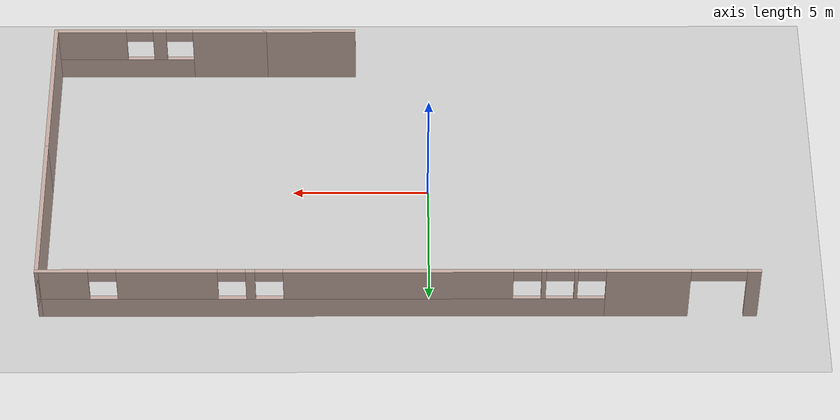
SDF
<sdf version="1.7">
 <world name="default">
  <model name="ground_plane">
   <static>1</static>
   <link name="link">
    <collision name="collision">
     <geometry><plane><normal>0 0 1</normal><size>100 100</size></plane></geometry>
     <surface>
      <contact><collide_bitmask>65535</collide_bitmask></contact>
      <friction><ode><mu>100</mu><mu2>50</mu2></ode></friction>
     </surface>
    </collision>
    <visual name="visual">
     <cast_shadows>0</cast_shadows>
     <geometry><plane><normal>0 0 1</normal><size>100 100</size></plane></geometry>
     <material>
      <script><uri>file://media/materials/scripts/gazebo.material</uri><name>Gazebo/Grey</name></script>
     </material>
    </visual>
   </link>
  </model>
  <model name="Boundary">
   <link name="Wall_23">
    <pose>3.34982 -5.85738 0 0 -0 0</pose>
    <visual name="Wall_23_Visual">
     <pose>0 0 1.25 0 -0 0</pose>
     <geometry><box><size>3.5 0.15 2.5</size></box></geometry>
     <material>
      <script><uri>file://media/materials/scripts/gazebo.material</uri><name>Gazebo/Grey</name></script>
      <ambient>0.760784 0.662745 0.627451 1</ambient>
      <shader type="pixel"/>
     </material>
    </visual>
    <collision name="Wall_23_Collision">
     <pose>0 0 1.25 0 -0 0</pose>
     <geometry><box><size>3.5 0.15 2.5</size></box></geometry>
     <surface>
      <friction>
       <ode><mu>1</mu><mu2>1</mu2><fdir1>0 0 0</fdir1><slip1>0</slip1><slip2>0</slip2></ode>
       <torsional>
        <coefficient>1</coefficient>
        <patch_radius>0</patch_radius>
        <surface_radius>0</surface_radius>
        <use_patch_radius>1</use_patch_radius>
        <ode><slip>0</slip></ode>
       </torsional>
      </friction>
      <bounce><restitution_coefficient>0</restitution_coefficient><threshold>1e+06</threshold></bounce>
      <contact>
       <collide_without_contact>0</collide_without_contact>
       <collide_without_contact_bitmask>1</collide_without_contact_bitmask>
       <collide_bitmask>1</collide_bitmask>
       <ode>
        <soft_cfm>0</soft_cfm>
        <soft_erp>0.2</soft_erp>
        <kp>1e+13</kp>
        <kd>1</kd>
        <max_vel>0.01</max_vel>
        <min_depth>0</min_depth>
       </ode>
       <bullet>
        <split_impulse>1</split_impulse>
        <split_impulse_penetration_threshold>-0.01</split_impulse_penetration_threshold>
        <soft_cfm>0</soft_cfm>
        <soft_erp>0.2</soft_erp>
        <kp>1e+13</kp>
        <kd>1</kd>
       </bullet>
      </contact>
     </surface>
    </collision>
   </link>
   <link name="Wall_29">
    <pose>8.94982 -5.85738 0 0 -0 0</pose>
    <visual name="Wall_29_Visual_0">
     <pose>-2.60604 0 1.25 0 -0 0</pose>
     <geometry><box><size>2.78791 0.15 2.5</size></box></geometry>
     <material>
      <script><uri>file://media/materials/scripts/gazebo.material</uri><name>Gazebo/Grey</name></script>
      <ambient>0.760784 0.662745 0.627451 1</ambient>
      <shader type="pixel"/>
     </material>
    </visual>
    <visual name="Wall_29_Visual_1">
     <pose>1.39396 0 0.5 0 -0 0</pose>
     <geometry><box><size>5.21209 0.15 1</size></box></geometry>
     <material>
      <script><uri>file://media/materials/scripts/gazebo.material</uri><name>Gazebo/Grey</name></script>
      <ambient>0.760784 0.662745 0.627451 1</ambient>
      <shader type="pixel"/>
     </material>
    </visual>
    <visual name="Wall_29_Visual_2">
     <pose>0.036339 0 1.75 0 -0 0</pose>
     <geometry><box><size>0.496857 0.15 1.5</size></box></geometry>
     <material>
      <script><uri>file://media/materials/scripts/gazebo.material</uri><name>Gazebo/Grey</name></script>
      <ambient>0.760784 0.662745 0.627451 1</ambient>
      <shader type="pixel"/>
     </material>
    </visual>
    <visual name="Wall_29_Visual_3">
     <pose>2.64238 0 1.75 0 -0 0</pose>
     <geometry><box><size>2.71523 0.15 1.5</size></box></geometry>
     <material>
      <script><uri>file://media/materials/scripts/gazebo.material</uri><name>Gazebo/Grey</name></script>
      <ambient>0.760784 0.662745 0.627451 1</ambient>
      <shader type="pixel"/>
     </material>
    </visual>
    <visual name="Wall_29_Visual_4">
     <pose>-0.71209 0 2.25 0 -0 0</pose>
     <geometry><box><size>1 0.15 0.5</size></box></geometry>
     <material>
      <script><uri>file://media/materials/scripts/gazebo.material</uri><name>Gazebo/Grey</name></script>
      <ambient>0.760784 0.662745 0.627451 1</ambient>
      <shader type="pixel"/>
     </material>
    </visual>
    <visual name="Wall_29_Visual_5">
     <pose>0.784767 0 2.25 0 -0 0</pose>
     <geometry><box><size>1 0.15 0.5</size></box></geometry>
     <material>
      <script><uri>file://media/materials/scripts/gazebo.material</uri><name>Gazebo/Grey</name></script>
      <ambient>0.760784 0.662745 0.627451 1</ambient>
      <shader type="pixel"/>
     </material>
    </visual>
    <collision name="Wall_29_Collision_0">
     <pose>-2.60604 0 1.25 0 -0 0</pose>
     <geometry><box><size>2.78791 0.15 2.5</size></box></geometry>
     <surface>
      <friction>
       <ode><mu>1</mu><mu2>1</mu2><fdir1>0 0 0</fdir1><slip1>0</slip1><slip2>0</slip2></ode>
       <torsional>
        <coefficient>1</coefficient>
        <patch_radius>0</patch_radius>
        <surface_radius>0</surface_radius>
        <use_patch_radius>1</use_patch_radius>
        <ode><slip>0</slip></ode>
       </torsional>
      </friction>
      <bounce><restitution_coefficient>0</restitution_coefficient><threshold>1e+06</threshold></bounce>
      <contact>
       <collide_without_contact>0</collide_without_contact>
       <collide_without_contact_bitmask>1</collide_without_contact_bitmask>
       <collide_bitmask>1</collide_bitmask>
       <ode>
        <soft_cfm>0</soft_cfm>
        <soft_erp>0.2</soft_erp>
        <kp>1e+13</kp>
        <kd>1</kd>
        <max_vel>0.01</max_vel>
        <min_depth>0</min_depth>
       </ode>
       <bullet>
        <split_impulse>1</split_impulse>
        <split_impulse_penetration_threshold>-0.01</split_impulse_penetration_threshold>
        <soft_cfm>0</soft_cfm>
        <soft_erp>0.2</soft_erp>
        <kp>1e+13</kp>
        <kd>1</kd>
       </bullet>
      </contact>
     </surface>
    </collision>
    <collision name="Wall_29_Collision_1">
     <pose>1.39396 0 0.5 0 -0 0</pose>
     <geometry><box><size>5.21209 0.15 1</size></box></geometry>
     <surface>
      <friction>
       <ode><mu>1</mu><mu2>1</mu2><fdir1>0 0 0</fdir1><slip1>0</slip1><slip2>0</slip2></ode>
       <torsional>
        <coefficient>1</coefficient>
        <patch_radius>0</patch_radius>
        <surface_radius>0</surface_radius>
        <use_patch_radius>1</use_patch_radius>
        <ode><slip>0</slip></ode>
       </torsional>
      </friction>
      <bounce><restitution_coefficient>0</restitution_coefficient><threshold>1e+06</threshold></bounce>
      <contact>
       <collide_without_contact>0</collide_without_contact>
       <collide_without_contact_bitmask>1</collide_without_contact_bitmask>
       <collide_bitmask>1</collide_bitmask>
       <ode>
        <soft_cfm>0</soft_cfm>
        <soft_erp>0.2</soft_erp>
        <kp>1e+13</kp>
        <kd>1</kd>
        <max_vel>0.01</max_vel>
        <min_depth>0</min_depth>
       </ode>
       <bullet>
        <split_impulse>1</split_impulse>
        <split_impulse_penetration_threshold>-0.01</split_impulse_penetration_threshold>
        <soft_cfm>0</soft_cfm>
        <soft_erp>0.2</soft_erp>
        <kp>1e+13</kp>
        <kd>1</kd>
       </bullet>
      </contact>
     </surface>
    </collision>
    <collision name="Wall_29_Collision_2">
     <pose>0.036339 0 1.75 0 -0 0</pose>
     <geometry><box><size>0.496857 0.15 1.5</size></box></geometry>
     <surface>
      <friction>
       <ode><mu>1</mu><mu2>1</mu2><fdir1>0 0 0</fdir1><slip1>0</slip1><slip2>0</slip2></ode>
       <torsional>
        <coefficient>1</coefficient>
        <patch_radius>0</patch_radius>
        <surface_radius>0</surface_radius>
        <use_patch_radius>1</use_patch_radius>
        <ode><slip>0</slip></ode>
       </torsional>
      </friction>
      <bounce><restitution_coefficient>0</restitution_coefficient><threshold>1e+06</threshold></bounce>
      <contact>
       <collide_without_contact>0</collide_without_contact>
       <collide_without_contact_bitmask>1</collide_without_contact_bitmask>
       <collide_bitmask>1</collide_bitmask>
       <ode>
        <soft_cfm>0</soft_cfm>
        <soft_erp>0.2</soft_erp>
        <kp>1e+13</kp>
        <kd>1</kd>
        <max_vel>0.01</max_vel>
        <min_depth>0</min_depth>
       </ode>
       <bullet>
        <split_impulse>1</split_impulse>
        <split_impulse_penetration_threshold>-0.01</split_impulse_penetration_threshold>
        <soft_cfm>0</soft_cfm>
        <soft_erp>0.2</soft_erp>
        <kp>1e+13</kp>
        <kd>1</kd>
       </bullet>
      </contact>
     </surface>
    </collision>
    <collision name="Wall_29_Collision_3">
     <pose>2.64238 0 1.75 0 -0 0</pose>
     <geometry><box><size>2.71523 0.15 1.5</size></box></geometry>
     <surface>
      <friction>
       <ode><mu>1</mu><mu2>1</mu2><fdir1>0 0 0</fdir1><slip1>0</slip1><slip2>0</slip2></ode>
       <torsional>
        <coefficient>1</coefficient>
        <patch_radius>0</patch_radius>
        <surface_radius>0</surface_radius>
        <use_patch_radius>1</use_patch_radius>
        <ode><slip>0</slip></ode>
       </torsional>
      </friction>
      <bounce><restitution_coefficient>0</restitution_coefficient><threshold>1e+06</threshold></bounce>
      <contact>
       <collide_without_contact>0</collide_without_contact>
       <collide_without_contact_bitmask>1</collide_without_contact_bitmask>
       <collide_bitmask>1</collide_bitmask>
       <ode>
        <soft_cfm>0</soft_cfm>
        <soft_erp>0.2</soft_erp>
        <kp>1e+13</kp>
        <kd>1</kd>
        <max_vel>0.01</max_vel>
        <min_depth>0</min_depth>
       </ode>
       <bullet>
        <split_impulse>1</split_impulse>
        <split_impulse_penetration_threshold>-0.01</split_impulse_penetration_threshold>
        <soft_cfm>0</soft_cfm>
        <soft_erp>0.2</soft_erp>
        <kp>1e+13</kp>
        <kd>1</kd>
       </bullet>
      </contact>
     </surface>
    </collision>
    <collision name="Wall_29_Collision_5">
     <pose>0.784767 0 2.25 0 -0 0</pose>
     <geometry><box><size>1 0.15 0.5</size></box></geometry>
     <surface>
      <friction>
       <ode><mu>1</mu><mu2>1</mu2><fdir1>0 0 0</fdir1><slip1>0</slip1><slip2>0</slip2></ode>
       <torsional>
        <coefficient>1</coefficient>
        <patch_radius>0</patch_radius>
        <surface_radius>0</surface_radius>
        <use_patch_radius>1</use_patch_radius>
        <ode><slip>0</slip></ode>
       </torsional>
      </friction>
      <bounce><restitution_coefficient>0</restitution_coefficient><threshold>1e+06</threshold></bounce>
      <contact>
       <collide_without_contact>0</collide_without_contact>
       <collide_without_contact_bitmask>1</collide_without_contact_bitmask>
       <collide_bitmask>1</collide_bitmask>
       <ode>
        <soft_cfm>0</soft_cfm>
        <soft_erp>0.2</soft_erp>
        <kp>1e+13</kp>
        <kd>1</kd>
        <max_vel>0.01</max_vel>
        <min_depth>0</min_depth>
       </ode>
       <bullet>
        <split_impulse>1</split_impulse>
        <split_impulse_penetration_threshold>-0.01</split_impulse_penetration_threshold>
        <soft_cfm>0</soft_cfm>
        <soft_erp>0.2</soft_erp>
        <kp>1e+13</kp>
        <kd>1</kd>
       </bullet>
      </contact>
     </surface>
    </collision>
    <collision name="Wall_29_Collision_4">
     <pose>-0.71209 0 2.25 0 -0 0</pose>
     <geometry><box><size>1 0.15 0.5</size></box></geometry>
     <surface>
      <friction>
       <ode><mu>1</mu><mu2>1</mu2><fdir1>0 0 0</fdir1><slip1>0</slip1><slip2>0</slip2></ode>
       <torsional>
        <coefficient>1</coefficient>
        <patch_radius>0</patch_radius>
        <surface_radius>0</surface_radius>
        <use_patch_radius>1</use_patch_radius>
        <ode><slip>0</slip></ode>
       </torsional>
      </friction>
      <bounce><restitution_coefficient>0</restitution_coefficient><threshold>1e+06</threshold></bounce>
      <contact>
       <collide_without_contact>0</collide_without_contact>
       <collide_without_contact_bitmask>1</collide_without_contact_bitmask>
       <collide_bitmask>1</collide_bitmask>
       <ode>
        <soft_cfm>0</soft_cfm>
        <soft_erp>0.2</soft_erp>
        <kp>1e+13</kp>
        <kd>1</kd>
        <max_vel>0.01</max_vel>
        <min_depth>0</min_depth>
       </ode>
       <bullet>
        <split_impulse>1</split_impulse>
        <split_impulse_penetration_threshold>-0.01</split_impulse_penetration_threshold>
        <soft_cfm>0</soft_cfm>
        <soft_erp>0.2</soft_erp>
        <kp>1e+13</kp>
        <kd>1</kd>
       </bullet>
      </contact>
     </surface>
    </collision>
   </link>
   <link name="Wall_31">
    <pose>12.8748 -2.93238 0 0 -0 1.5708</pose>
    <visual name="Wall_31_Visual">
     <pose>0 0 1.25 0 -0 0</pose>
     <geometry><box><size>6 0.15 2.5</size></box></geometry>
     <material>
      <script><uri>file://media/materials/scripts/gazebo.material</uri><name>Gazebo/Grey</name></script>
      <ambient>0.760784 0.662745 0.627451 1</ambient>
      <shader type="pixel"/>
     </material>
    </visual>
    <collision name="Wall_31_Collision">
     <pose>0 0 1.25 0 -0 0</pose>
     <geometry><box><size>6 0.15 2.5</size></box></geometry>
     <surface>
      <friction>
       <ode><mu>1</mu><mu2>1</mu2><fdir1>0 0 0</fdir1><slip1>0</slip1><slip2>0</slip2></ode>
       <torsional>
        <coefficient>1</coefficient>
        <patch_radius>0</patch_radius>
        <surface_radius>0</surface_radius>
        <use_patch_radius>1</use_patch_radius>
        <ode><slip>0</slip></ode>
       </torsional>
      </friction>
      <bounce><restitution_coefficient>0</restitution_coefficient><threshold>1e+06</threshold></bounce>
      <contact>
       <collide_without_contact>0</collide_without_contact>
       <collide_without_contact_bitmask>1</collide_without_contact_bitmask>
       <collide_bitmask>1</collide_bitmask>
       <ode>
        <soft_cfm>0</soft_cfm>
        <soft_erp>0.2</soft_erp>
        <kp>1e+13</kp>
        <kd>1</kd>
        <max_vel>0.01</max_vel>
        <min_depth>0</min_depth>
       </ode>
       <bullet>
        <split_impulse>1</split_impulse>
        <split_impulse_penetration_threshold>-0.01</split_impulse_penetration_threshold>
        <soft_cfm>0</soft_cfm>
        <soft_erp>0.2</soft_erp>
        <kp>1e+13</kp>
        <kd>1</kd>
       </bullet>
      </contact>
     </surface>
    </collision>
   </link>
   <link name="Wall_37">
    <pose>12.8748 2.91762 0 0 -0 1.5708</pose>
    <visual name="Wall_37_Visual">
     <pose>0 0 1.25 0 -0 0</pose>
     <geometry><box><size>6 0.15 2.5</size></box></geometry>
     <material>
      <script><uri>file://media/materials/scripts/gazebo.material</uri><name>Gazebo/Grey</name></script>
      <ambient>0.760784 0.662745 0.627451 1</ambient>
      <shader type="pixel"/>
     </material>
    </visual>
    <collision name="Wall_37_Collision">
     <pose>0 0 1.25 0 -0 0</pose>
     <geometry><box><size>6 0.15 2.5</size></box></geometry>
     <surface>
      <friction>
       <ode><mu>1</mu><mu2>1</mu2><fdir1>0 0 0</fdir1><slip1>0</slip1><slip2>0</slip2></ode>
       <torsional>
        <coefficient>1</coefficient>
        <patch_radius>0</patch_radius>
        <surface_radius>0</surface_radius>
        <use_patch_radius>1</use_patch_radius>
        <ode><slip>0</slip></ode>
       </torsional>
      </friction>
      <bounce><restitution_coefficient>0</restitution_coefficient><threshold>1e+06</threshold></bounce>
      <contact>
       <collide_without_contact>0</collide_without_contact>
       <collide_without_contact_bitmask>1</collide_without_contact_bitmask>
       <collide_bitmask>1</collide_bitmask>
       <ode>
        <soft_cfm>0</soft_cfm>
        <soft_erp>0.2</soft_erp>
        <kp>1e+13</kp>
        <kd>1</kd>
        <max_vel>0.01</max_vel>
        <min_depth>0</min_depth>
       </ode>
       <bullet>
        <split_impulse>1</split_impulse>
        <split_impulse_penetration_threshold>-0.01</split_impulse_penetration_threshold>
        <soft_cfm>0</soft_cfm>
        <soft_erp>0.2</soft_erp>
        <kp>1e+13</kp>
        <kd>1</kd>
       </bullet>
      </contact>
     </surface>
    </collision>
   </link>
   <link name="Wall_39">
    <pose>0 5.84264 0 0 0 -2e-06</pose>
    <visual name="Wall_39_Visual_0">
     <pose>-12.6963 0 1.25 0 -0 0</pose>
     <geometry><box><size>0.507003 0.15 2.5</size></box></geometry>
     <material>
      <script><uri>file://media/materials/scripts/gazebo.material</uri><name>Gazebo/Grey</name></script>
      <ambient>0.760784 0.662745 0.627451 1</ambient>
      <shader type="pixel"/>
     </material>
    </visual>
    <visual name="Wall_39_Visual_1">
     <pose>-8.93538 0 1.25 0 -0 0</pose>
     <geometry><box><size>3.01488 0.15 2.5</size></box></geometry>
     <material>
      <script><uri>file://media/materials/scripts/gazebo.material</uri><name>Gazebo/Grey</name></script>
      <ambient>0.760784 0.662745 0.627451 1</ambient>
      <shader type="pixel"/>
     </material>
    </visual>
    <visual name="Wall_39_Visual_2">
     <pose>2.76094 0 0.5 0 -0 0</pose>
     <geometry><box><size>20.3778 0.15 1</size></box></geometry>
     <material>
      <script><uri>file://media/materials/scripts/gazebo.material</uri><name>Gazebo/Grey</name></script>
      <ambient>0.760784 0.662745 0.627451 1</ambient>
      <shader type="pixel"/>
     </material>
    </visual>
    <visual name="Wall_39_Visual_3">
     <pose>-6.3614 0 1.75 0 -0 0</pose>
     <geometry><box><size>0.133081 0.15 1.5</size></box></geometry>
     <material>
      <script><uri>file://media/materials/scripts/gazebo.material</uri><name>Gazebo/Grey</name></script>
      <ambient>0.760784 0.662745 0.627451 1</ambient>
      <shader type="pixel"/>
     </material>
    </visual>
    <visual name="Wall_39_Visual_4">
     <pose>-5.20894 0 1.75 0 -0 0</pose>
     <geometry><box><size>0.171834 0.15 1.5</size></box></geometry>
     <material>
      <script><uri>file://media/materials/scripts/gazebo.material</uri><name>Gazebo/Grey</name></script>
      <ambient>0.760784 0.662745 0.627451 1</ambient>
      <shader type="pixel"/>
     </material>
    </visual>
    <visual name="Wall_39_Visual_5">
     <pose>-0.013145 0 1.75 0 -0 0</pose>
     <geometry><box><size>8.21975 0.15 1.5</size></box></geometry>
     <material>
      <script><uri>file://media/materials/scripts/gazebo.material</uri><name>Gazebo/Grey</name></script>
      <ambient>0.760784 0.662745 0.627451 1</ambient>
      <shader type="pixel"/>
     </material>
    </visual>
    <visual name="Wall_39_Visual_6">
     <pose>5.26425 0 1.75 0 -0 0</pose>
     <geometry><box><size>0.335033 0.15 1.5</size></box></geometry>
     <material>
      <script><uri>file://media/materials/scripts/gazebo.material</uri><name>Gazebo/Grey</name></script>
      <ambient>0.760784 0.662745 0.627451 1</ambient>
      <shader type="pixel"/>
     </material>
    </visual>
    <visual name="Wall_39_Visual_7">
     <pose>8.23773 0 1.75 0 -0 0</pose>
     <geometry><box><size>3.61194 0.15 1.5</size></box></geometry>
     <material>
      <script><uri>file://media/materials/scripts/gazebo.material</uri><name>Gazebo/Grey</name></script>
      <ambient>0.760784 0.662745 0.627451 1</ambient>
      <shader type="pixel"/>
     </material>
    </visual>
    <visual name="Wall_39_Visual_8">
     <pose>11.9968 0 1.75 0 -0 0</pose>
     <geometry><box><size>1.90612 0.15 1.5</size></box></geometry>
     <material>
      <script><uri>file://media/materials/scripts/gazebo.material</uri><name>Gazebo/Grey</name></script>
      <ambient>0.760784 0.662745 0.627451 1</ambient>
      <shader type="pixel"/>
     </material>
    </visual>
    <visual name="Wall_39_Visual_9">
     <pose>-11.4428 0 2.25 0 -0 0</pose>
     <geometry><box><size>2 0.15 0.5</size></box></geometry>
     <material>
      <script><uri>file://media/materials/scripts/gazebo.material</uri><name>Gazebo/Grey</name></script>
      <ambient>0.760784 0.662745 0.627451 1</ambient>
      <shader type="pixel"/>
     </material>
    </visual>
    <visual name="Wall_39_Visual_10">
     <pose>-6.92794 0 2.25 0 -0 0</pose>
     <geometry><box><size>1 0.15 0.5</size></box></geometry>
     <material>
      <script><uri>file://media/materials/scripts/gazebo.material</uri><name>Gazebo/Grey</name></script>
      <ambient>0.760784 0.662745 0.627451 1</ambient>
      <shader type="pixel"/>
     </material>
    </visual>
    <visual name="Wall_39_Visual_11">
     <pose>-5.79486 0 2.25 0 -0 0</pose>
     <geometry><box><size>1 0.15 0.5</size></box></geometry>
     <material>
      <script><uri>file://media/materials/scripts/gazebo.material</uri><name>Gazebo/Grey</name></script>
      <ambient>0.760784 0.662745 0.627451 1</ambient>
      <shader type="pixel"/>
     </material>
    </visual>
    <visual name="Wall_39_Visual_12">
     <pose>-4.62302 0 2.25 0 -0 0</pose>
     <geometry><box><size>1 0.15 0.5</size></box></geometry>
     <material>
      <script><uri>file://media/materials/scripts/gazebo.material</uri><name>Gazebo/Grey</name></script>
      <ambient>0.760784 0.662745 0.627451 1</ambient>
      <shader type="pixel"/>
     </material>
    </visual>
    <visual name="Wall_39_Visual_13">
     <pose>4.59673 0 2.25 0 -0 0</pose>
     <geometry><box><size>1 0.15 0.5</size></box></geometry>
     <material>
      <script><uri>file://media/materials/scripts/gazebo.material</uri><name>Gazebo/Grey</name></script>
      <ambient>0.760784 0.662745 0.627451 1</ambient>
      <shader type="pixel"/>
     </material>
    </visual>
    <visual name="Wall_39_Visual_14">
     <pose>5.93177 0 2.25 0 -0 0</pose>
     <geometry><box><size>1 0.15 0.5</size></box></geometry>
     <material>
      <script><uri>file://media/materials/scripts/gazebo.material</uri><name>Gazebo/Grey</name></script>
      <ambient>0.760784 0.662745 0.627451 1</ambient>
      <shader type="pixel"/>
     </material>
    </visual>
    <visual name="Wall_39_Visual_15">
     <pose>10.5437 0 2.25 0 -0 0</pose>
     <geometry><box><size>1 0.15 0.5</size></box></geometry>
     <material>
      <script><uri>file://media/materials/scripts/gazebo.material</uri><name>Gazebo/Grey</name></script>
      <ambient>0.760784 0.662745 0.627451 1</ambient>
      <shader type="pixel"/>
     </material>
    </visual>
    <collision name="Wall_39_Collision_0">
     <pose>-12.6963 0 1.25 0 -0 0</pose>
     <geometry><box><size>0.507003 0.15 2.5</size></box></geometry>
     <surface>
      <friction>
       <ode><mu>1</mu><mu2>1</mu2><fdir1>0 0 0</fdir1><slip1>0</slip1><slip2>0</slip2></ode>
       <torsional>
        <coefficient>1</coefficient>
        <patch_radius>0</patch_radius>
        <surface_radius>0</surface_radius>
        <use_patch_radius>1</use_patch_radius>
        <ode><slip>0</slip></ode>
       </torsional>
      </friction>
      <bounce><restitution_coefficient>0</restitution_coefficient><threshold>1e+06</threshold></bounce>
      <contact>
       <collide_without_contact>0</collide_without_contact>
       <collide_without_contact_bitmask>1</collide_without_contact_bitmask>
       <collide_bitmask>1</collide_bitmask>
       <ode>
        <soft_cfm>0</soft_cfm>
        <soft_erp>0.2</soft_erp>
        <kp>1e+13</kp>
        <kd>1</kd>
        <max_vel>0.01</max_vel>
        <min_depth>0</min_depth>
       </ode>
       <bullet>
        <split_impulse>1</split_impulse>
        <split_impulse_penetration_threshold>-0.01</split_impulse_penetration_threshold>
        <soft_cfm>0</soft_cfm>
        <soft_erp>0.2</soft_erp>
        <kp>1e+13</kp>
        <kd>1</kd>
       </bullet>
      </contact>
     </surface>
    </collision>
    <collision name="Wall_39_Collision_1">
     <pose>-8.93538 0 1.25 0 -0 0</pose>
     <geometry><box><size>3.01488 0.15 2.5</size></box></geometry>
     <surface>
      <friction>
       <ode><mu>1</mu><mu2>1</mu2><fdir1>0 0 0</fdir1><slip1>0</slip1><slip2>0</slip2></ode>
       <torsional>
        <coefficient>1</coefficient>
        <patch_radius>0</patch_radius>
        <surface_radius>0</surface_radius>
        <use_patch_radius>1</use_patch_radius>
        <ode><slip>0</slip></ode>
       </torsional>
      </friction>
      <bounce><restitution_coefficient>0</restitution_coefficient><threshold>1e+06</threshold></bounce>
      <contact>
       <collide_without_contact>0</collide_without_contact>
       <collide_without_contact_bitmask>1</collide_without_contact_bitmask>
       <collide_bitmask>1</collide_bitmask>
       <ode>
        <soft_cfm>0</soft_cfm>
        <soft_erp>0.2</soft_erp>
        <kp>1e+13</kp>
        <kd>1</kd>
        <max_vel>0.01</max_vel>
        <min_depth>0</min_depth>
       </ode>
       <bullet>
        <split_impulse>1</split_impulse>
        <split_impulse_penetration_threshold>-0.01</split_impulse_penetration_threshold>
        <soft_cfm>0</soft_cfm>
        <soft_erp>0.2</soft_erp>
        <kp>1e+13</kp>
        <kd>1</kd>
       </bullet>
      </contact>
     </surface>
    </collision>
    <collision name="Wall_39_Collision_2">
     <pose>2.76094 0 0.5 0 -0 0</pose>
     <geometry><box><size>20.3778 0.15 1</size></box></geometry>
     <surface>
      <friction>
       <ode><mu>1</mu><mu2>1</mu2><fdir1>0 0 0</fdir1><slip1>0</slip1><slip2>0</slip2></ode>
       <torsional>
        <coefficient>1</coefficient>
        <patch_radius>0</patch_radius>
        <surface_radius>0</surface_radius>
        <use_patch_radius>1</use_patch_radius>
        <ode><slip>0</slip></ode>
       </torsional>
      </friction>
      <bounce><restitution_coefficient>0</restitution_coefficient><threshold>1e+06</threshold></bounce>
      <contact>
       <collide_without_contact>0</collide_without_contact>
       <collide_without_contact_bitmask>1</collide_without_contact_bitmask>
       <collide_bitmask>1</collide_bitmask>
       <ode>
        <soft_cfm>0</soft_cfm>
        <soft_erp>0.2</soft_erp>
        <kp>1e+13</kp>
        <kd>1</kd>
        <max_vel>0.01</max_vel>
        <min_depth>0</min_depth>
       </ode>
       <bullet>
        <split_impulse>1</split_impulse>
        <split_impulse_penetration_threshold>-0.01</split_impulse_penetration_threshold>
        <soft_cfm>0</soft_cfm>
        <soft_erp>0.2</soft_erp>
        <kp>1e+13</kp>
        <kd>1</kd>
       </bullet>
      </contact>
     </surface>
    </collision>
    <collision name="Wall_39_Collision_3">
     <pose>-6.3614 0 1.75 0 -0 0</pose>
     <geometry><box><size>0.133081 0.15 1.5</size></box></geometry>
     <surface>
      <friction>
       <ode><mu>1</mu><mu2>1</mu2><fdir1>0 0 0</fdir1><slip1>0</slip1><slip2>0</slip2></ode>
       <torsional>
        <coefficient>1</coefficient>
        <patch_radius>0</patch_radius>
        <surface_radius>0</surface_radius>
        <use_patch_radius>1</use_patch_radius>
        <ode><slip>0</slip></ode>
       </torsional>
      </friction>
      <bounce><restitution_coefficient>0</restitution_coefficient><threshold>1e+06</threshold></bounce>
      <contact>
       <collide_without_contact>0</collide_without_contact>
       <collide_without_contact_bitmask>1</collide_without_contact_bitmask>
       <collide_bitmask>1</collide_bitmask>
       <ode>
        <soft_cfm>0</soft_cfm>
        <soft_erp>0.2</soft_erp>
        <kp>1e+13</kp>
        <kd>1</kd>
        <max_vel>0.01</max_vel>
        <min_depth>0</min_depth>
       </ode>
       <bullet>
        <split_impulse>1</split_impulse>
        <split_impulse_penetration_threshold>-0.01</split_impulse_penetration_threshold>
        <soft_cfm>0</soft_cfm>
        <soft_erp>0.2</soft_erp>
        <kp>1e+13</kp>
        <kd>1</kd>
       </bullet>
      </contact>
     </surface>
    </collision>
    <collision name="Wall_39_Collision_5">
     <pose>-0.013145 0 1.75 0 -0 0</pose>
     <geometry><box><size>8.21975 0.15 1.5</size></box></geometry>
     <surface>
      <friction>
       <ode><mu>1</mu><mu2>1</mu2><fdir1>0 0 0</fdir1><slip1>0</slip1><slip2>0</slip2></ode>
       <torsional>
        <coefficient>1</coefficient>
        <patch_radius>0</patch_radius>
        <surface_radius>0</surface_radius>
        <use_patch_radius>1</use_patch_radius>
        <ode><slip>0</slip></ode>
       </torsional>
      </friction>
      <bounce><restitution_coefficient>0</restitution_coefficient><threshold>1e+06</threshold></bounce>
      <contact>
       <collide_without_contact>0</collide_without_contact>
       <collide_without_contact_bitmask>1</collide_without_contact_bitmask>
       <collide_bitmask>1</collide_bitmask>
       <ode>
        <soft_cfm>0</soft_cfm>
        <soft_erp>0.2</soft_erp>
        <kp>1e+13</kp>
        <kd>1</kd>
        <max_vel>0.01</max_vel>
        <min_depth>0</min_depth>
       </ode>
       <bullet>
        <split_impulse>1</split_impulse>
        <split_impulse_penetration_threshold>-0.01</split_impulse_penetration_threshold>
        <soft_cfm>0</soft_cfm>
        <soft_erp>0.2</soft_erp>
        <kp>1e+13</kp>
        <kd>1</kd>
       </bullet>
      </contact>
     </surface>
    </collision>
    <collision name="Wall_39_Collision_4">
     <pose>-5.20894 0 1.75 0 -0 0</pose>
     <geometry><box><size>0.171834 0.15 1.5</size></box></geometry>
     <surface>
      <friction>
       <ode><mu>1</mu><mu2>1</mu2><fdir1>0 0 0</fdir1><slip1>0</slip1><slip2>0</slip2></ode>
       <torsional>
        <coefficient>1</coefficient>
        <patch_radius>0</patch_radius>
        <surface_radius>0</surface_radius>
        <use_patch_radius>1</use_patch_radius>
        <ode><slip>0</slip></ode>
       </torsional>
      </friction>
      <bounce><restitution_coefficient>0</restitution_coefficient><threshold>1e+06</threshold></bounce>
      <contact>
       <collide_without_contact>0</collide_without_contact>
       <collide_without_contact_bitmask>1</collide_without_contact_bitmask>
       <collide_bitmask>1</collide_bitmask>
       <ode>
        <soft_cfm>0</soft_cfm>
        <soft_erp>0.2</soft_erp>
        <kp>1e+13</kp>
        <kd>1</kd>
        <max_vel>0.01</max_vel>
        <min_depth>0</min_depth>
       </ode>
       <bullet>
        <split_impulse>1</split_impulse>
        <split_impulse_penetration_threshold>-0.01</split_impulse_penetration_threshold>
        <soft_cfm>0</soft_cfm>
        <soft_erp>0.2</soft_erp>
        <kp>1e+13</kp>
        <kd>1</kd>
       </bullet>
      </contact>
     </surface>
    </collision>
    <collision name="Wall_39_Collision_6">
     <pose>5.26425 0 1.75 0 -0 0</pose>
     <geometry><box><size>0.335033 0.15 1.5</size></box></geometry>
     <surface>
      <friction>
       <ode><mu>1</mu><mu2>1</mu2><fdir1>0 0 0</fdir1><slip1>0</slip1><slip2>0</slip2></ode>
       <torsional>
        <coefficient>1</coefficient>
        <patch_radius>0</patch_radius>
        <surface_radius>0</surface_radius>
        <use_patch_radius>1</use_patch_radius>
        <ode><slip>0</slip></ode>
       </torsional>
      </friction>
      <bounce><restitution_coefficient>0</restitution_coefficient><threshold>1e+06</threshold></bounce>
      <contact>
       <collide_without_contact>0</collide_without_contact>
       <collide_without_contact_bitmask>1</collide_without_contact_bitmask>
       <collide_bitmask>1</collide_bitmask>
       <ode>
        <soft_cfm>0</soft_cfm>
        <soft_erp>0.2</soft_erp>
        <kp>1e+13</kp>
        <kd>1</kd>
        <max_vel>0.01</max_vel>
        <min_depth>0</min_depth>
       </ode>
       <bullet>
        <split_impulse>1</split_impulse>
        <split_impulse_penetration_threshold>-0.01</split_impulse_penetration_threshold>
        <soft_cfm>0</soft_cfm>
        <soft_erp>0.2</soft_erp>
        <kp>1e+13</kp>
        <kd>1</kd>
       </bullet>
      </contact>
     </surface>
    </collision>
    <collision name="Wall_39_Collision_7">
     <pose>8.23773 0 1.75 0 -0 0</pose>
     <geometry><box><size>3.61194 0.15 1.5</size></box></geometry>
     <surface>
      <friction>
       <ode><mu>1</mu><mu2>1</mu2><fdir1>0 0 0</fdir1><slip1>0</slip1><slip2>0</slip2></ode>
       <torsional>
        <coefficient>1</coefficient>
        <patch_radius>0</patch_radius>
        <surface_radius>0</surface_radius>
        <use_patch_radius>1</use_patch_radius>
        <ode><slip>0</slip></ode>
       </torsional>
      </friction>
      <bounce><restitution_coefficient>0</restitution_coefficient><threshold>1e+06</threshold></bounce>
      <contact>
       <collide_without_contact>0</collide_without_contact>
       <collide_without_contact_bitmask>1</collide_without_contact_bitmask>
       <collide_bitmask>1</collide_bitmask>
       <ode>
        <soft_cfm>0</soft_cfm>
        <soft_erp>0.2</soft_erp>
        <kp>1e+13</kp>
        <kd>1</kd>
        <max_vel>0.01</max_vel>
        <min_depth>0</min_depth>
       </ode>
       <bullet>
        <split_impulse>1</split_impulse>
        <split_impulse_penetration_threshold>-0.01</split_impulse_penetration_threshold>
        <soft_cfm>0</soft_cfm>
        <soft_erp>0.2</soft_erp>
        <kp>1e+13</kp>
        <kd>1</kd>
       </bullet>
      </contact>
     </surface>
    </collision>
    <collision name="Wall_39_Collision_8">
     <pose>11.9968 0 1.75 0 -0 0</pose>
     <geometry><box><size>1.90612 0.15 1.5</size></box></geometry>
     <surface>
      <friction>
       <ode><mu>1</mu><mu2>1</mu2><fdir1>0 0 0</fdir1><slip1>0</slip1><slip2>0</slip2></ode>
       <torsional>
        <coefficient>1</coefficient>
        <patch_radius>0</patch_radius>
        <surface_radius>0</surface_radius>
        <use_patch_radius>1</use_patch_radius>
        <ode><slip>0</slip></ode>
       </torsional>
      </friction>
      <bounce><restitution_coefficient>0</restitution_coefficient><threshold>1e+06</threshold></bounce>
      <contact>
       <collide_without_contact>0</collide_without_contact>
       <collide_without_contact_bitmask>1</collide_without_contact_bitmask>
       <collide_bitmask>1</collide_bitmask>
       <ode>
        <soft_cfm>0</soft_cfm>
        <soft_erp>0.2</soft_erp>
        <kp>1e+13</kp>
        <kd>1</kd>
        <max_vel>0.01</max_vel>
        <min_depth>0</min_depth>
       </ode>
       <bullet>
        <split_impulse>1</split_impulse>
        <split_impulse_penetration_threshold>-0.01</split_impulse_penetration_threshold>
        <soft_cfm>0</soft_cfm>
        <soft_erp>0.2</soft_erp>
        <kp>1e+13</kp>
        <kd>1</kd>
       </bullet>
      </contact>
     </surface>
    </collision>
    <collision name="Wall_39_Collision_9">
     <pose>-11.4428 0 2.25 0 -0 0</pose>
     <geometry><box><size>2 0.15 0.5</size></box></geometry>
     <surface>
      <friction>
       <ode><mu>1</mu><mu2>1</mu2><fdir1>0 0 0</fdir1><slip1>0</slip1><slip2>0</slip2></ode>
       <torsional>
        <coefficient>1</coefficient>
        <patch_radius>0</patch_radius>
        <surface_radius>0</surface_radius>
        <use_patch_radius>1</use_patch_radius>
        <ode><slip>0</slip></ode>
       </torsional>
      </friction>
      <bounce><restitution_coefficient>0</restitution_coefficient><threshold>1e+06</threshold></bounce>
      <contact>
       <collide_without_contact>0</collide_without_contact>
       <collide_without_contact_bitmask>1</collide_without_contact_bitmask>
       <collide_bitmask>1</collide_bitmask>
       <ode>
        <soft_cfm>0</soft_cfm>
        <soft_erp>0.2</soft_erp>
        <kp>1e+13</kp>
        <kd>1</kd>
        <max_vel>0.01</max_vel>
        <min_depth>0</min_depth>
       </ode>
       <bullet>
        <split_impulse>1</split_impulse>
        <split_impulse_penetration_threshold>-0.01</split_impulse_penetration_threshold>
        <soft_cfm>0</soft_cfm>
        <soft_erp>0.2</soft_erp>
        <kp>1e+13</kp>
        <kd>1</kd>
       </bullet>
      </contact>
     </surface>
    </collision>
    <collision name="Wall_39_Collision_10">
     <pose>-6.92794 0 2.25 0 -0 0</pose>
     <geometry><box><size>1 0.15 0.5</size></box></geometry>
     <surface>
      <friction>
       <ode><mu>1</mu><mu2>1</mu2><fdir1>0 0 0</fdir1><slip1>0</slip1><slip2>0</slip2></ode>
       <torsional>
        <coefficient>1</coefficient>
        <patch_radius>0</patch_radius>
        <surface_radius>0</surface_radius>
        <use_patch_radius>1</use_patch_radius>
        <ode><slip>0</slip></ode>
       </torsional>
      </friction>
      <bounce><restitution_coefficient>0</restitution_coefficient><threshold>1e+06</threshold></bounce>
      <contact>
       <collide_without_contact>0</collide_without_contact>
       <collide_without_contact_bitmask>1</collide_without_contact_bitmask>
       <collide_bitmask>1</collide_bitmask>
       <ode>
        <soft_cfm>0</soft_cfm>
        <soft_erp>0.2</soft_erp>
        <kp>1e+13</kp>
        <kd>1</kd>
        <max_vel>0.01</max_vel>
        <min_depth>0</min_depth>
       </ode>
       <bullet>
        <split_impulse>1</split_impulse>
        <split_impulse_penetration_threshold>-0.01</split_impulse_penetration_threshold>
        <soft_cfm>0</soft_cfm>
        <soft_erp>0.2</soft_erp>
        <kp>1e+13</kp>
        <kd>1</kd>
       </bullet>
      </contact>
     </surface>
    </collision>
    <collision name="Wall_39_Collision_11">
     <pose>-5.79486 0 2.25 0 -0 0</pose>
     <geometry><box><size>1 0.15 0.5</size></box></geometry>
     <surface>
      <friction>
       <ode><mu>1</mu><mu2>1</mu2><fdir1>0 0 0</fdir1><slip1>0</slip1><slip2>0</slip2></ode>
       <torsional>
        <coefficient>1</coefficient>
        <patch_radius>0</patch_radius>
        <surface_radius>0</surface_radius>
        <use_patch_radius>1</use_patch_radius>
        <ode><slip>0</slip></ode>
       </torsional>
      </friction>
      <bounce><restitution_coefficient>0</restitution_coefficient><threshold>1e+06</threshold></bounce>
      <contact>
       <collide_without_contact>0</collide_without_contact>
       <collide_without_contact_bitmask>1</collide_without_contact_bitmask>
       <collide_bitmask>1</collide_bitmask>
       <ode>
        <soft_cfm>0</soft_cfm>
        <soft_erp>0.2</soft_erp>
        <kp>1e+13</kp>
        <kd>1</kd>
        <max_vel>0.01</max_vel>
        <min_depth>0</min_depth>
       </ode>
       <bullet>
        <split_impulse>1</split_impulse>
        <split_impulse_penetration_threshold>-0.01</split_impulse_penetration_threshold>
        <soft_cfm>0</soft_cfm>
        <soft_erp>0.2</soft_erp>
        <kp>1e+13</kp>
        <kd>1</kd>
       </bullet>
      </contact>
     </surface>
    </collision>
    <collision name="Wall_39_Collision_12">
     <pose>-4.62302 0 2.25 0 -0 0</pose>
     <geometry><box><size>1 0.15 0.5</size></box></geometry>
     <surface>
      <friction>
       <ode><mu>1</mu><mu2>1</mu2><fdir1>0 0 0</fdir1><slip1>0</slip1><slip2>0</slip2></ode>
       <torsional>
        <coefficient>1</coefficient>
        <patch_radius>0</patch_radius>
        <surface_radius>0</surface_radius>
        <use_patch_radius>1</use_patch_radius>
        <ode><slip>0</slip></ode>
       </torsional>
      </friction>
      <bounce><restitution_coefficient>0</restitution_coefficient><threshold>1e+06</threshold></bounce>
      <contact>
       <collide_without_contact>0</collide_without_contact>
       <collide_without_contact_bitmask>1</collide_without_contact_bitmask>
       <collide_bitmask>1</collide_bitmask>
       <ode>
        <soft_cfm>0</soft_cfm>
        <soft_erp>0.2</soft_erp>
        <kp>1e+13</kp>
        <kd>1</kd>
        <max_vel>0.01</max_vel>
        <min_depth>0</min_depth>
       </ode>
       <bullet>
        <split_impulse>1</split_impulse>
        <split_impulse_penetration_threshold>-0.01</split_impulse_penetration_threshold>
        <soft_cfm>0</soft_cfm>
        <soft_erp>0.2</soft_erp>
        <kp>1e+13</kp>
        <kd>1</kd>
       </bullet>
      </contact>
     </surface>
    </collision>
    <collision name="Wall_39_Collision_13">
     <pose>4.59673 0 2.25 0 -0 0</pose>
     <geometry><box><size>1 0.15 0.5</size></box></geometry>
     <surface>
      <friction>
       <ode><mu>1</mu><mu2>1</mu2><fdir1>0 0 0</fdir1><slip1>0</slip1><slip2>0</slip2></ode>
       <torsional>
        <coefficient>1</coefficient>
        <patch_radius>0</patch_radius>
        <surface_radius>0</surface_radius>
        <use_patch_radius>1</use_patch_radius>
        <ode><slip>0</slip></ode>
       </torsional>
      </friction>
      <bounce><restitution_coefficient>0</restitution_coefficient><threshold>1e+06</threshold></bounce>
      <contact>
       <collide_without_contact>0</collide_without_contact>
       <collide_without_contact_bitmask>1</collide_without_contact_bitmask>
       <collide_bitmask>1</collide_bitmask>
       <ode>
        <soft_cfm>0</soft_cfm>
        <soft_erp>0.2</soft_erp>
        <kp>1e+13</kp>
        <kd>1</kd>
        <max_vel>0.01</max_vel>
        <min_depth>0</min_depth>
       </ode>
       <bullet>
        <split_impulse>1</split_impulse>
        <split_impulse_penetration_threshold>-0.01</split_impulse_penetration_threshold>
        <soft_cfm>0</soft_cfm>
        <soft_erp>0.2</soft_erp>
        <kp>1e+13</kp>
        <kd>1</kd>
       </bullet>
      </contact>
     </surface>
    </collision>
    <collision name="Wall_39_Collision_15">
     <pose>10.5437 0 2.25 0 -0 0</pose>
     <geometry><box><size>1 0.15 0.5</size></box></geometry>
     <surface>
      <friction>
       <ode><mu>1</mu><mu2>1</mu2><fdir1>0 0 0</fdir1><slip1>0</slip1><slip2>0</slip2></ode>
       <torsional>
        <coefficient>1</coefficient>
        <patch_radius>0</patch_radius>
        <surface_radius>0</surface_radius>
        <use_patch_radius>1</use_patch_radius>
        <ode><slip>0</slip></ode>
       </torsional>
      </friction>
      <bounce><restitution_coefficient>0</restitution_coefficient><threshold>1e+06</threshold></bounce>
      <contact>
       <collide_without_contact>0</collide_without_contact>
       <collide_without_contact_bitmask>1</collide_without_contact_bitmask>
       <collide_bitmask>1</collide_bitmask>
       <ode>
        <soft_cfm>0</soft_cfm>
        <soft_erp>0.2</soft_erp>
        <kp>1e+13</kp>
        <kd>1</kd>
        <max_vel>0.01</max_vel>
        <min_depth>0</min_depth>
       </ode>
       <bullet>
        <split_impulse>1</split_impulse>
        <split_impulse_penetration_threshold>-0.01</split_impulse_penetration_threshold>
        <soft_cfm>0</soft_cfm>
        <soft_erp>0.2</soft_erp>
        <kp>1e+13</kp>
        <kd>1</kd>
       </bullet>
      </contact>
     </surface>
    </collision>
    <collision name="Wall_39_Collision_14">
     <pose>5.93177 0 2.25 0 -0 0</pose>
     <geometry><box><size>1 0.15 0.5</size></box></geometry>
     <surface>
      <friction>
       <ode><mu>1</mu><mu2>1</mu2><fdir1>0 0 0</fdir1><slip1>0</slip1><slip2>0</slip2></ode>
       <torsional>
        <coefficient>1</coefficient>
        <patch_radius>0</patch_radius>
        <surface_radius>0</surface_radius>
        <use_patch_radius>1</use_patch_radius>
        <ode><slip>0</slip></ode>
       </torsional>
      </friction>
      <bounce><restitution_coefficient>0</restitution_coefficient><threshold>1e+06</threshold></bounce>
      <contact>
       <collide_without_contact>0</collide_without_contact>
       <collide_without_contact_bitmask>1</collide_without_contact_bitmask>
       <collide_bitmask>1</collide_bitmask>
       <ode>
        <soft_cfm>0</soft_cfm>
        <soft_erp>0.2</soft_erp>
        <kp>1e+13</kp>
        <kd>1</kd>
        <max_vel>0.01</max_vel>
        <min_depth>0</min_depth>
       </ode>
       <bullet>
        <split_impulse>1</split_impulse>
        <split_impulse_penetration_threshold>-0.01</split_impulse_penetration_threshold>
        <soft_cfm>0</soft_cfm>
        <soft_erp>0.2</soft_erp>
        <kp>1e+13</kp>
        <kd>1</kd>
       </bullet>
      </contact>
     </surface>
    </collision>
   </link>
   <static>1</static>
   <pose>1.1243 -0.06601 0 0 -0 0</pose>
  </model>
 </world>
</sdf>
